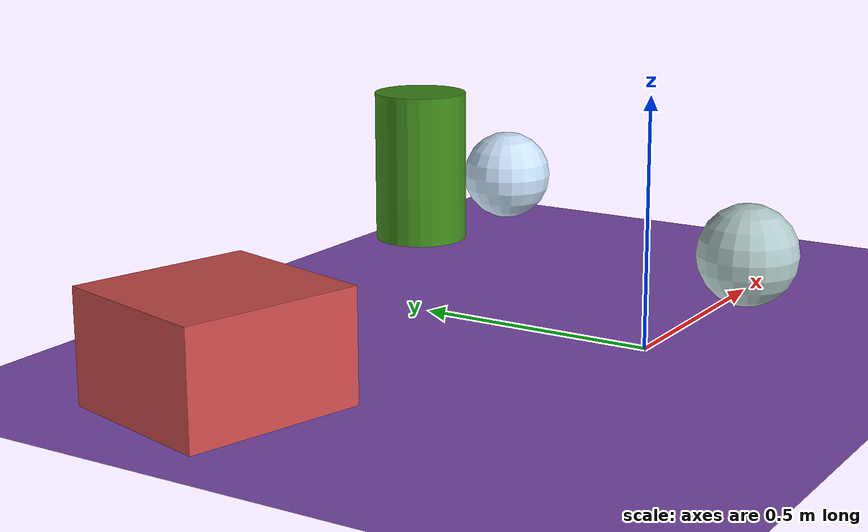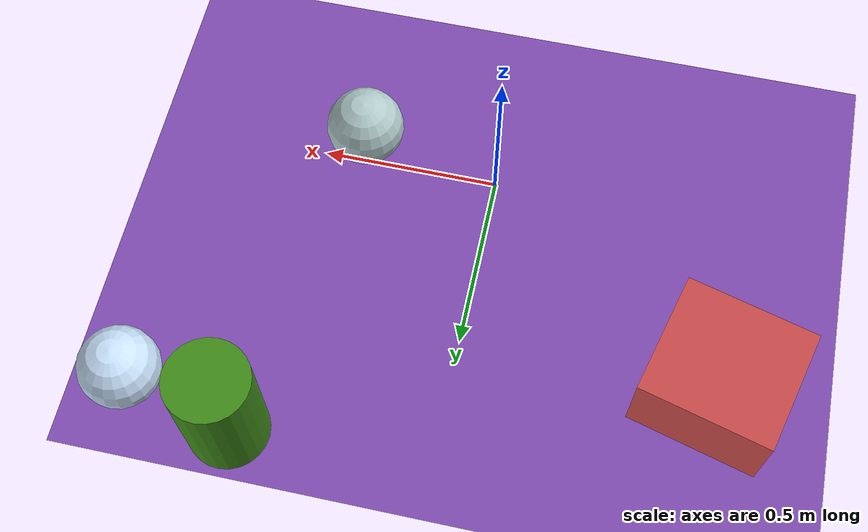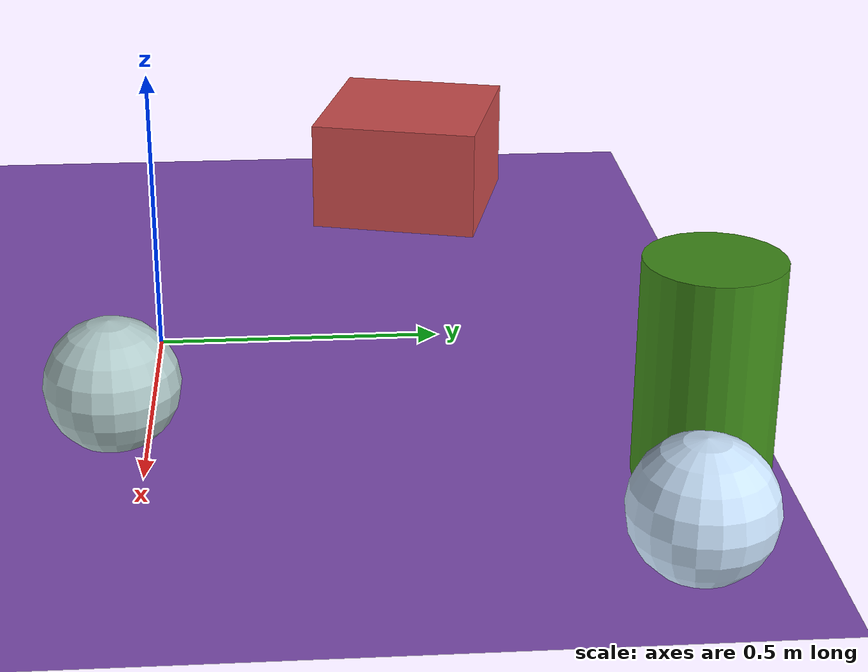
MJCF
<mujoco>
   <asset>
<texture type="skybox" builtin="gradient" rgb1="0.8 0.4 0.3" rgb2="0.6 0.4 0.3" width="256" height="256"/>
<texture name="flat_0" builtin="flat" rgb1="0.8 0.9 1.0" rgb2="0.8 0.9 1.0"  width="200" height="200"/>
<texture name="flat_1" builtin="flat" rgb1="0.7 0.8 0.8" rgb2="0.7 0.8 0.8"  width="200" height="200"/>
<texture name="flat_2" builtin="flat" rgb1="0.8 0.3 0.3" rgb2="0.8 0.3 0.3"  width="200" height="200"/>
<texture name="checker_3" builtin="checker" rgb1="0.4 0.9 0.1" rgb2="0.1 0.2 0.1" width="200" height="200"/><material name="flat_0_mat" reflectance="0" texture="flat_0" texuniform="true"/>
<material name="flat_1_mat" reflectance="0" texture="flat_1" texuniform="true"/>
<material name="flat_2_mat" reflectance="0" texture="flat_2" texuniform="true"/>
<material name="checker_3_mat" reflectance="0" texrepeat="9 9" texture="checker_3" texuniform="false" />
   </asset>

   <worldbody>
      <light diffuse=".9 .9 .9" pos="0 0 3" dir="0 0 -1"/>
     <geom type="plane" size="1 1 0.1" rgba="0.5 0.3 0.7 1"/>
<geom type="sphere" pos="0.84 0.8 0.11" size="0.11 0.11 0.11" material="flat_0_mat" euler="0 0 55" />
<geom type="sphere" pos="0.39 -0.05 0.11" size="0.11 0.11 0.11" material="flat_1_mat" euler="0 0 24" />
<geom type="box" pos="-0.69 0.5 0.11" size="0.17 0.18 0.11" material="flat_2_mat" euler="0 0 75" />
<geom type="cylinder" pos="0.54 0.87 0.18" size="0.11 0.18 0.18" material="checker_3_mat" euler="0 0 62" /><camera euler="60 0 180" fovy="60" name="camera1" pos="-0.2 -1.5 1"></camera>   </worldbody>
</mujoco>
